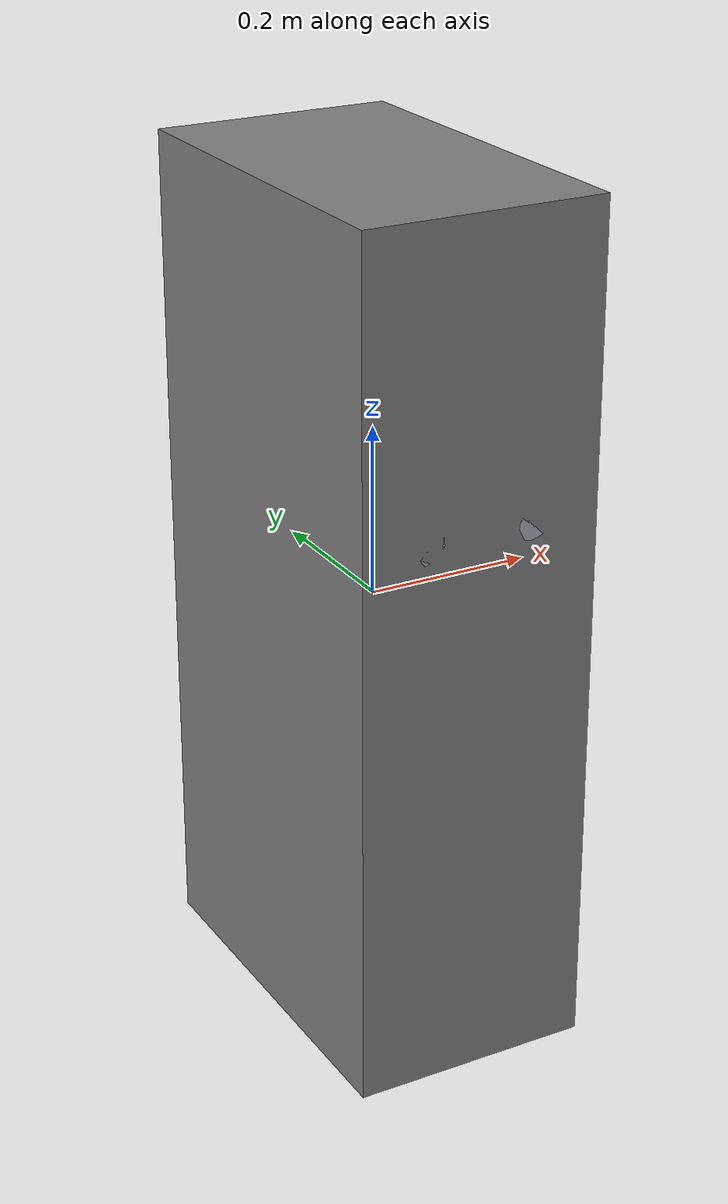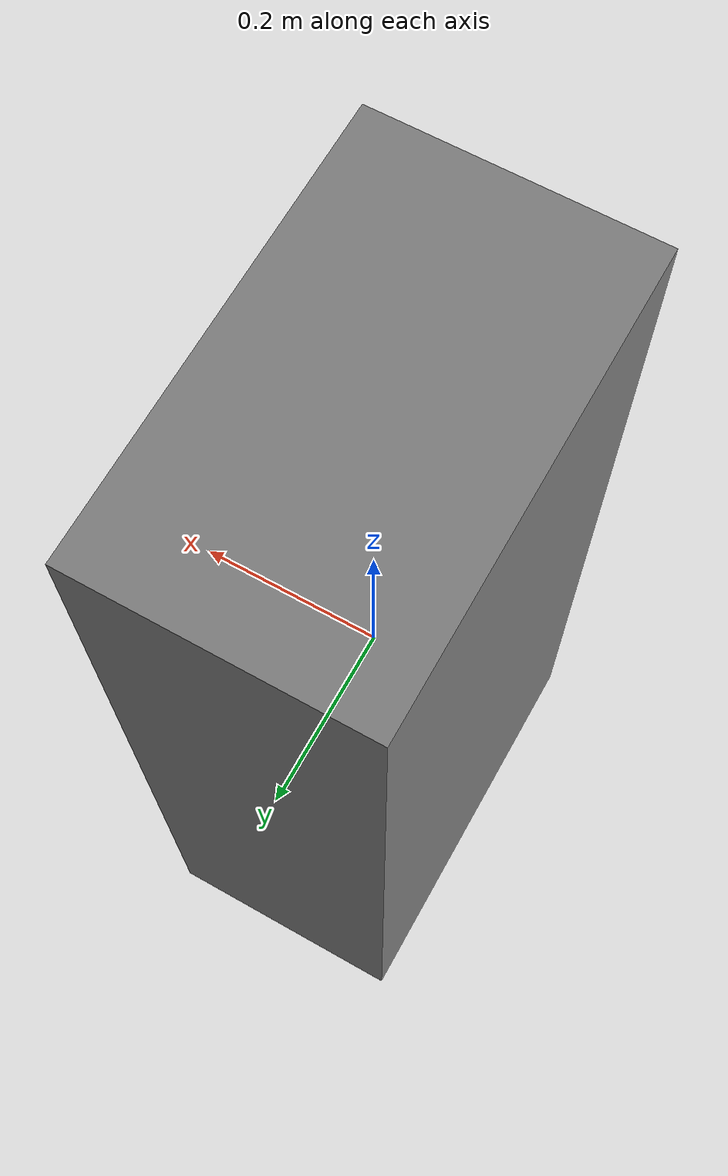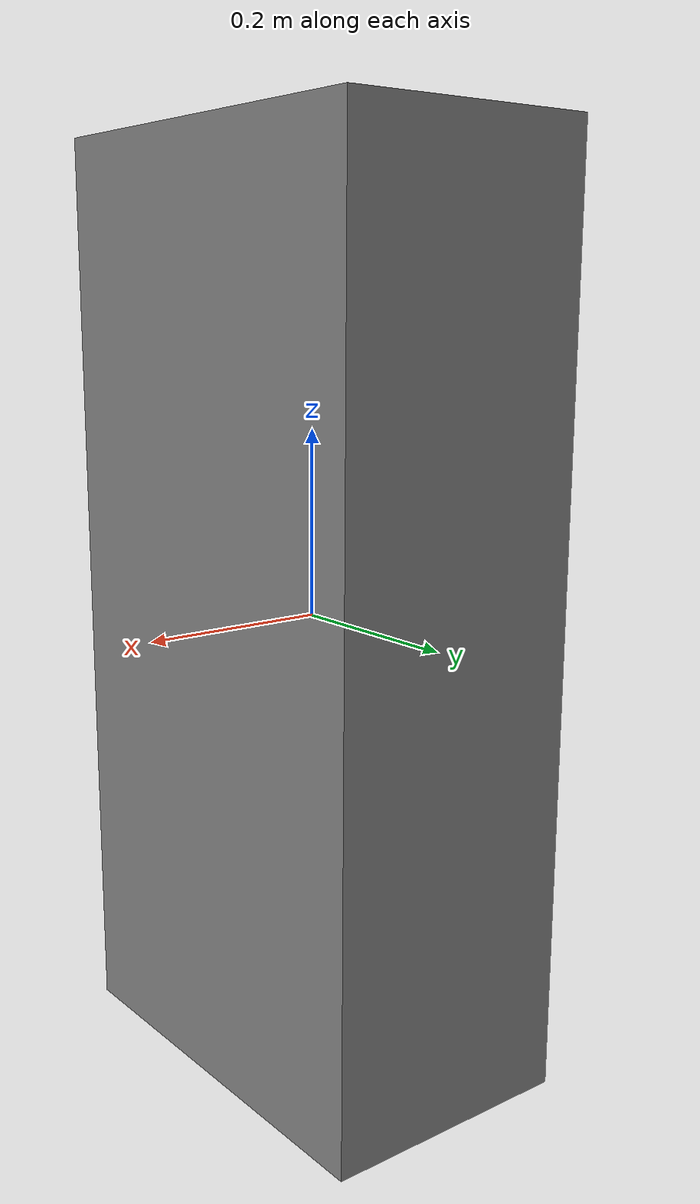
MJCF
<mujoco model="asset">
  <asset>
    <mesh name="assimp_wuson_visual" file="assimp_wuson.normalized.obj"/>
    <mesh name="assimp_wuson_collision" file="assimp_wuson.collision_box.obj"/>
  </asset>
  <worldbody><body name="assimp_wuson">
    <geom type="mesh" mesh="assimp_wuson_visual" contype="0" conaffinity="0" rgba="0.65 0.68 0.72 1"/>
    <geom type="mesh" mesh="assimp_wuson_collision" density="1000"/>
  </body></worldbody>
</mujoco>
